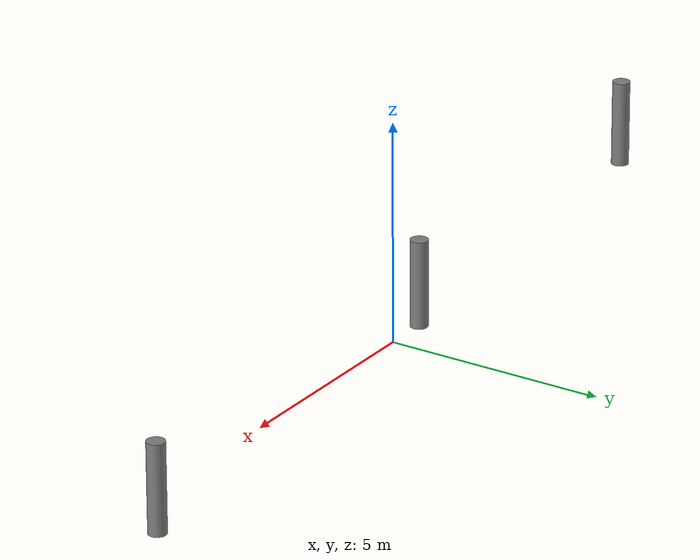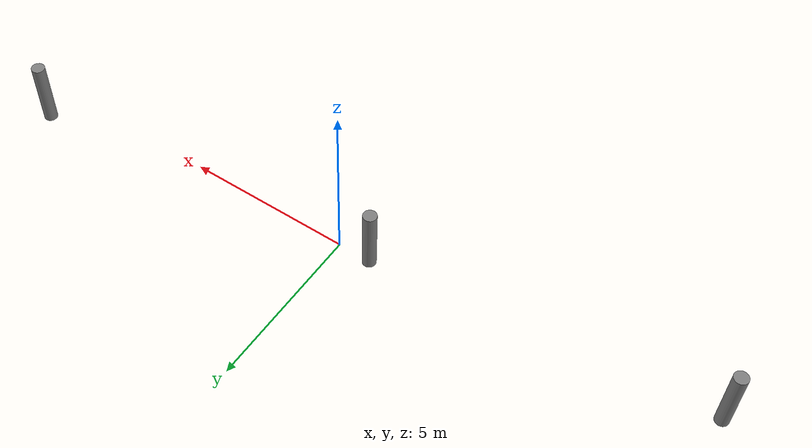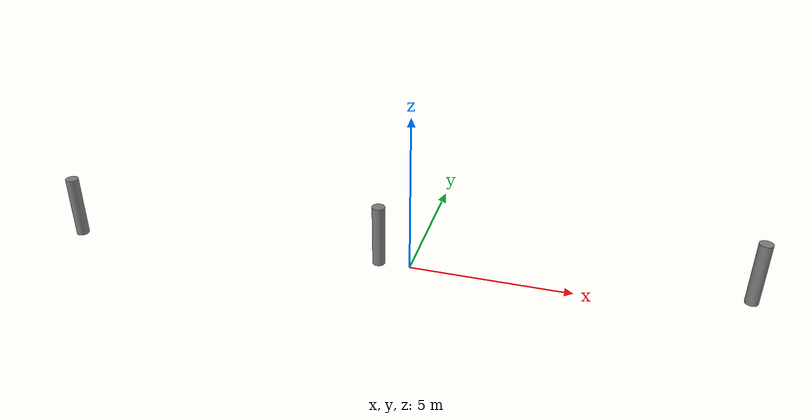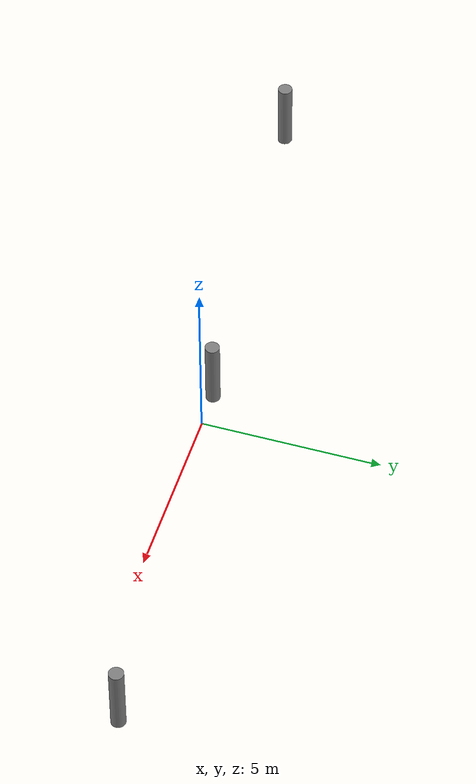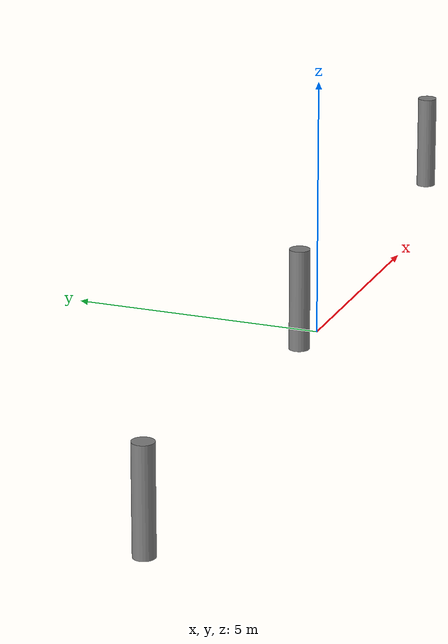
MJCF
<mujoco model="objects">

	<default>
		<default class="dynamic_objects">
			<default class="dynamic_object">
				<geom type="cylinder" pos="0 0 0" size="0 0 0" euler="0 0 0" mass="5"/>
			</default>
		</default>
		<default class="dynamic_object_joint">
			<joint type="slide" axis="0 1 0" limited="true" range="0 100" frictionloss="0.01" damping="150" armature="0.002"/>
		</default>
	</default>

	<worldbody>
		<body name="dynamic_object_body_1" pos="-1 0 1">
			<site name="dynamic_object_1_link" pos="0 0 0" size="0.01 0.01 0.01"/>
			<joint class="dynamic_object_joint" name="dynamic_object_joint_1" axis="1 0 0" />
			<geom name="dynamic_object_1" class="dynamic_object" pos="0 0 0" size="0.2 1"/>
		</body>
		<body name="dynamic_object_body_2" pos="10 1 1">
			<site name="dynamic_object_2_link" pos="0 0 0" size="0.001 0.001 0.001"/>
			<joint class="dynamic_object_joint" name="dynamic_object_joint_2" axis="1 0 0"/>
			<geom name="dynamic_object_2" class="dynamic_object" pos="0 0 0" size="0.2 1"/>
		</body>
		<body name="dynamic_object_body_3" pos="-11 -1 1">
			<site name="dynamic_object_3_link" pos="0 0 0" size="0.001 0.001 0.001"/>
			<joint class="dynamic_object_joint" name="dynamic_object_joint_3" axis="-1 0 0"/>
			<geom name="dynamic_object_3" class="dynamic_object" pos="0 0 0" size="0.2 1"/>
		</body>
	</worldbody>

	<actuator>
		<position  gear="20" class="dynamic_object_joint" kp="100" name="dynamic_object_1" joint="dynamic_object_joint_1" ctrlrange ="0 100" ctrllimited="true" />
		<position  gear="20" class="dynamic_object_joint" kp="100" name="dynamic_object_2" joint="dynamic_object_joint_2" ctrlrange ="0 100" ctrllimited="true" />
		<position  gear="20" class="dynamic_object_joint" kp="100" name="dynamic_object_3" joint="dynamic_object_joint_3" ctrlrange ="0 100" ctrllimited="true" />
	</actuator>

</mujoco>
